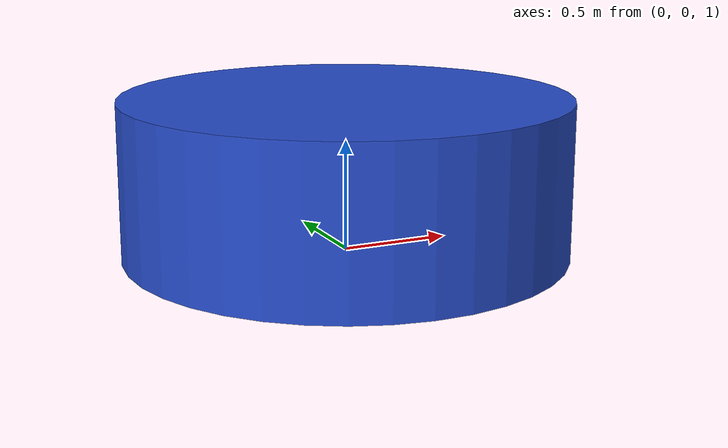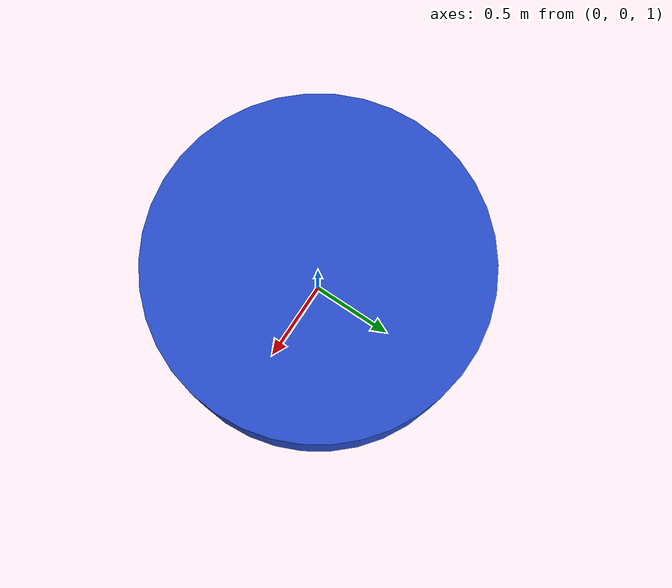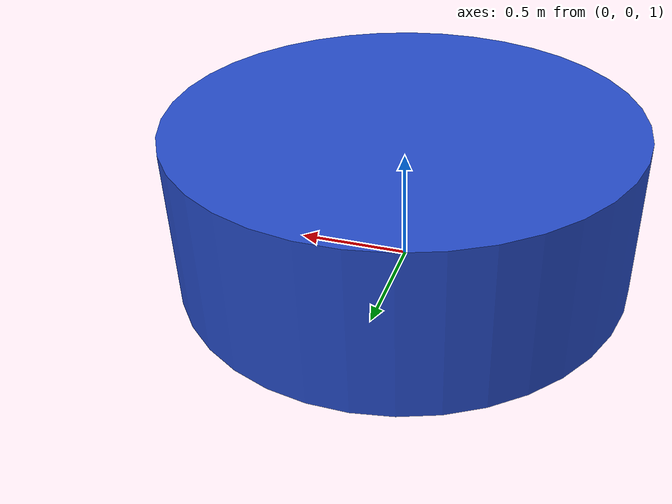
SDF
<?xml version="1.0" ?>
<sdf version="1.6">
  <model name="su_alanı">
    <pose>0 0 1 0 0 0</pose>
    <static>true</static>
    <link name="link">
      <visual name="visual">
        <geometry>
          <mesh>
            <scale>1 1 1</scale>
            <uri>model://su_alanı/meshes/su_alanı.stl</uri>
          </mesh>
        </geometry>
        <material>
          <script>
            <name>Gazebo/Blue</name>
          </script>
        </material>
      </visual>
    </link>
  </model>
</sdf>
